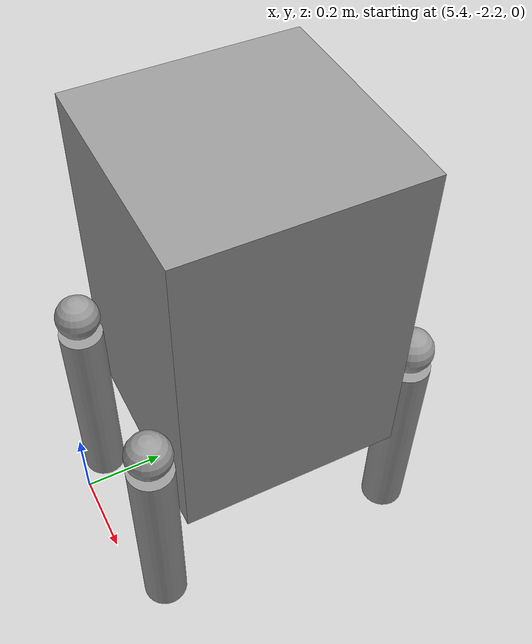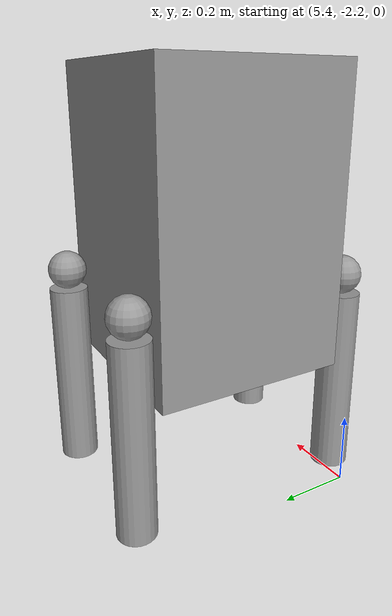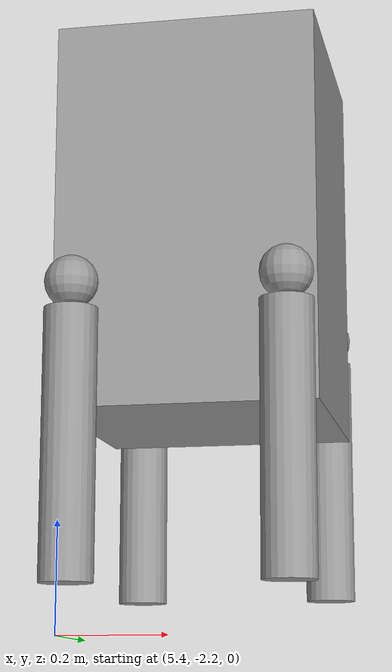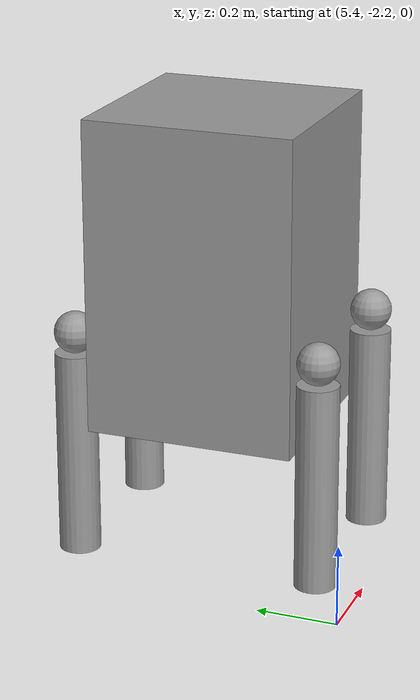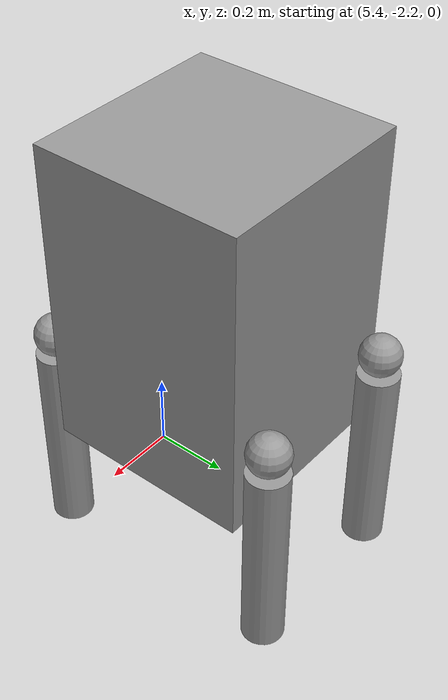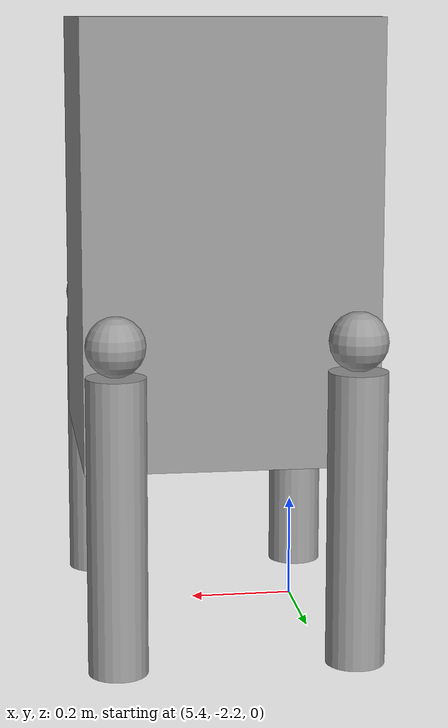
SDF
<?xml version='1.0'?>
<sdf version='1.6'>
  <model name='myhumanoid'>
    <link name='link_0'>
      <pose frame=''>5.60089 -1.84381 0.544444 0 -0 0</pose>
      <inertial>
        <mass>1</mass>
        <inertia>
          <ixx>0.166667</ixx>
          <ixy>0</ixy>
          <ixz>0</ixz>
          <iyy>0.166667</iyy>
          <iyz>0</iyz>
          <izz>0.166667</izz>
        </inertia>
        <pose frame=''>0 0 0.25 0 -0 0</pose>
      </inertial>
      <gravity>1</gravity>
      <self_collide>0</self_collide>
      <kinematic>0</kinematic>
      <visual name='visual'>
        <pose frame=''>0 0 0.25 0 -0 0</pose>
        <geometry>
          <box>
            <size>0.5 0.5 0.75</size>
          </box>
        </geometry>
        <material>
          <lighting>1</lighting>
          <script>
            <uri>file://media/materials/scripts/gazebo.material</uri>
            <name>Gazebo/Grey</name>
          </script>
          <ambient>0.3 0.3 0.3 1</ambient>
          <diffuse>0.7 0.7 0.7 1</diffuse>
          <specular>0.01 0.01 0.01 1</specular>
          <emissive>0 0 0 1</emissive>
          <shader type='vertex'>
            <normal_map>__default__</normal_map>
          </shader>
        </material>
        <transparency>0</transparency>
        <cast_shadows>1</cast_shadows>
      </visual>
      <collision name='collision'>
        <laser_retro>0</laser_retro>
        <max_contacts>10</max_contacts>
        <pose frame=''>0 0 0.25 0 -0 0</pose>
        <geometry>
          <box>
            <size>0.5 0.5 0.75</size>
          </box>
        </geometry>
        <surface>
          <friction>
            <ode>
              <mu>1</mu>
              <mu2>1</mu2>
              <fdir1>0 0 0</fdir1>
              <slip1>0</slip1>
              <slip2>0</slip2>
            </ode>
            <torsional>
              <coefficient>1</coefficient>
              <patch_radius>0</patch_radius>
              <surface_radius>0</surface_radius>
              <use_patch_radius>1</use_patch_radius>
              <ode>
                <slip>0</slip>
              </ode>
            </torsional>
          </friction>
          <bounce>
            <restitution_coefficient>0</restitution_coefficient>
            <threshold>1e+06</threshold>
          </bounce>
          <contact>
            <collide_without_contact>0</collide_without_contact>
            <collide_without_contact_bitmask>1</collide_without_contact_bitmask>
            <collide_bitmask>1</collide_bitmask>
            <ode>
              <soft_cfm>0</soft_cfm>
              <soft_erp>0.2</soft_erp>
              <kp>1e+13</kp>
              <kd>1</kd>
              <max_vel>0.01</max_vel>
              <min_depth>0</min_depth>
            </ode>
            <bullet>
              <split_impulse>1</split_impulse>
              <split_impulse_penetration_threshold>-0.01</split_impulse_penetration_threshold>
              <soft_cfm>0</soft_cfm>
              <soft_erp>0.2</soft_erp>
              <kp>1e+13</kp>
              <kd>1</kd>
            </bullet>
          </contact>
        </surface>
      </collision>
    </link>
    <link name='link_1_clone'>
      <pose frame=''>5.40089 -1.54381 0.644444 0 -0 0</pose>
      <inertial>
        <mass>1</mass>
        <inertia>
          <ixx>0.1</ixx>
          <ixy>0</ixy>
          <ixz>0</ixz>
          <iyy>0.1</iyy>
          <iyz>0</iyz>
          <izz>0.1</izz>
        </inertia>
        <pose frame=''>0 0 0 0 -0 0</pose>
      </inertial>
      <self_collide>0</self_collide>
      <kinematic>0</kinematic>
      <gravity>1</gravity>
      <visual name='visual'>
        <pose frame=''>0 0 0 0 -0 0</pose>
        <geometry>
          <sphere>
            <radius>0.05</radius>
          </sphere>
        </geometry>
        <material>
          <lighting>1</lighting>
          <script>
            <uri>file://media/materials/scripts/gazebo.material</uri>
            <name>Gazebo/Grey</name>
          </script>
          <ambient>0.3 0.3 0.3 1</ambient>
          <diffuse>0.7 0.7 0.7 1</diffuse>
          <specular>0.01 0.01 0.01 1</specular>
          <emissive>0 0 0 1</emissive>
          <shader type='vertex'>
            <normal_map>__default__</normal_map>
          </shader>
        </material>
        <transparency>0</transparency>
        <cast_shadows>1</cast_shadows>
      </visual>
      <collision name='collision'>
        <laser_retro>0</laser_retro>
        <max_contacts>10</max_contacts>
        <pose frame=''>0 0 0 0 -0 0</pose>
        <geometry>
          <sphere>
            <radius>0.05</radius>
          </sphere>
        </geometry>
        <surface>
          <friction>
            <ode>
              <mu>1</mu>
              <mu2>1</mu2>
              <fdir1>0 0 0</fdir1>
              <slip1>0</slip1>
              <slip2>0</slip2>
            </ode>
            <torsional>
              <coefficient>1</coefficient>
              <patch_radius>0</patch_radius>
              <surface_radius>0</surface_radius>
              <use_patch_radius>1</use_patch_radius>
              <ode>
                <slip>0</slip>
              </ode>
            </torsional>
          </friction>
          <bounce>
            <restitution_coefficient>0</restitution_coefficient>
            <threshold>1e+06</threshold>
          </bounce>
          <contact>
            <collide_without_contact>0</collide_without_contact>
            <collide_without_contact_bitmask>1</collide_without_contact_bitmask>
            <collide_bitmask>1</collide_bitmask>
            <ode>
              <soft_cfm>0</soft_cfm>
              <soft_erp>0.2</soft_erp>
              <kp>1e+13</kp>
              <kd>1</kd>
              <max_vel>0.01</max_vel>
              <min_depth>0</min_depth>
            </ode>
            <bullet>
              <split_impulse>1</split_impulse>
              <split_impulse_penetration_threshold>-0.01</split_impulse_penetration_threshold>
              <soft_cfm>0</soft_cfm>
              <soft_erp>0.2</soft_erp>
              <kp>1e+13</kp>
              <kd>1</kd>
            </bullet>
          </contact>
        </surface>
      </collision>
    </link>
    <link name='link_1_clone_clone'>
      <pose frame=''>5.40089 -2.14381 0.644444 0 -0 0</pose>
      <inertial>
        <mass>1</mass>
        <inertia>
          <ixx>0.1</ixx>
          <ixy>0</ixy>
          <ixz>0</ixz>
          <iyy>0.1</iyy>
          <iyz>0</iyz>
          <izz>0.1</izz>
        </inertia>
        <pose frame=''>0 0 0 0 -0 0</pose>
      </inertial>
      <self_collide>0</self_collide>
      <kinematic>0</kinematic>
      <visual name='visual'>
        <pose frame=''>0 0 0 0 -0 0</pose>
        <geometry>
          <sphere>
            <radius>0.05</radius>
          </sphere>
        </geometry>
        <material>
          <lighting>1</lighting>
          <script>
            <uri>file://media/materials/scripts/gazebo.material</uri>
            <name>Gazebo/Grey</name>
          </script>
          <ambient>0.3 0.3 0.3 1</ambient>
          <diffuse>0.7 0.7 0.7 1</diffuse>
          <specular>0.01 0.01 0.01 1</specular>
          <emissive>0 0 0 1</emissive>
          <shader type='vertex'>
            <normal_map>__default__</normal_map>
          </shader>
        </material>
        <transparency>0</transparency>
        <cast_shadows>1</cast_shadows>
      </visual>
      <collision name='collision'>
        <laser_retro>0</laser_retro>
        <max_contacts>10</max_contacts>
        <pose frame=''>0 0 0 0 -0 0</pose>
        <geometry>
          <sphere>
            <radius>0.05</radius>
          </sphere>
        </geometry>
        <surface>
          <friction>
            <ode>
              <mu>1</mu>
              <mu2>1</mu2>
              <fdir1>0 0 0</fdir1>
              <slip1>0</slip1>
              <slip2>0</slip2>
            </ode>
            <torsional>
              <coefficient>1</coefficient>
              <patch_radius>0</patch_radius>
              <surface_radius>0</surface_radius>
              <use_patch_radius>1</use_patch_radius>
              <ode>
                <slip>0</slip>
              </ode>
            </torsional>
          </friction>
          <bounce>
            <restitution_coefficient>0</restitution_coefficient>
            <threshold>1e+06</threshold>
          </bounce>
          <contact>
            <collide_without_contact>0</collide_without_contact>
            <collide_without_contact_bitmask>1</collide_without_contact_bitmask>
            <collide_bitmask>1</collide_bitmask>
            <ode>
              <soft_cfm>0</soft_cfm>
              <soft_erp>0.2</soft_erp>
              <kp>1e+13</kp>
              <kd>1</kd>
              <max_vel>0.01</max_vel>
              <min_depth>0</min_depth>
            </ode>
            <bullet>
              <split_impulse>1</split_impulse>
              <split_impulse_penetration_threshold>-0.01</split_impulse_penetration_threshold>
              <soft_cfm>0</soft_cfm>
              <soft_erp>0.2</soft_erp>
              <kp>1e+13</kp>
              <kd>1</kd>
            </bullet>
          </contact>
        </surface>
      </collision>
    </link>
    <link name='link_1_clone_clone_0'>
      <pose frame=''>5.80089 -2.14381 0.644444 0 -0 0</pose>
      <inertial>
        <mass>1</mass>
        <inertia>
          <ixx>0.1</ixx>
          <ixy>0</ixy>
          <ixz>0</ixz>
          <iyy>0.1</iyy>
          <iyz>0</iyz>
          <izz>0.1</izz>
        </inertia>
        <pose frame=''>0 0 0 0 -0 0</pose>
      </inertial>
      <self_collide>0</self_collide>
      <kinematic>0</kinematic>
      <gravity>1</gravity>
      <visual name='visual'>
        <pose frame=''>0 0 0 0 -0 0</pose>
        <geometry>
          <sphere>
            <radius>0.05</radius>
          </sphere>
        </geometry>
        <material>
          <lighting>1</lighting>
          <script>
            <uri>file://media/materials/scripts/gazebo.material</uri>
            <name>Gazebo/Grey</name>
          </script>
          <ambient>0.3 0.3 0.3 1</ambient>
          <diffuse>0.7 0.7 0.7 1</diffuse>
          <specular>0.01 0.01 0.01 1</specular>
          <emissive>0 0 0 1</emissive>
          <shader type='vertex'>
            <normal_map>__default__</normal_map>
          </shader>
        </material>
        <transparency>0</transparency>
        <cast_shadows>1</cast_shadows>
      </visual>
      <collision name='collision'>
        <laser_retro>0</laser_retro>
        <max_contacts>10</max_contacts>
        <pose frame=''>0 0 0 0 -0 0</pose>
        <geometry>
          <sphere>
            <radius>0.05</radius>
          </sphere>
        </geometry>
        <surface>
          <friction>
            <ode>
              <mu>1</mu>
              <mu2>1</mu2>
              <fdir1>0 0 0</fdir1>
              <slip1>0</slip1>
              <slip2>0</slip2>
            </ode>
            <torsional>
              <coefficient>1</coefficient>
              <patch_radius>0</patch_radius>
              <surface_radius>0</surface_radius>
              <use_patch_radius>1</use_patch_radius>
              <ode>
                <slip>0</slip>
              </ode>
            </torsional>
          </friction>
          <bounce>
            <restitution_coefficient>0</restitution_coefficient>
            <threshold>1e+06</threshold>
          </bounce>
          <contact>
            <collide_without_contact>0</collide_without_contact>
            <collide_without_contact_bitmask>1</collide_without_contact_bitmask>
            <collide_bitmask>1</collide_bitmask>
            <ode>
              <soft_cfm>0</soft_cfm>
              <soft_erp>0.2</soft_erp>
              <kp>1e+13</kp>
              <kd>1</kd>
              <max_vel>0.01</max_vel>
              <min_depth>0</min_depth>
            </ode>
            <bullet>
              <split_impulse>1</split_impulse>
              <split_impulse_penetration_threshold>-0.01</split_impulse_penetration_threshold>
              <soft_cfm>0</soft_cfm>
              <soft_erp>0.2</soft_erp>
              <kp>1e+13</kp>
              <kd>1</kd>
            </bullet>
          </contact>
        </surface>
      </collision>
    </link>
    <link name='link_1_clone_clone_1'>
      <pose frame=''>5.80089 -1.54381 0.644444 0 -0 0</pose>
      <inertial>
        <mass>1</mass>
        <inertia>
          <ixx>0.1</ixx>
          <ixy>0</ixy>
          <ixz>0</ixz>
          <iyy>0.1</iyy>
          <iyz>0</iyz>
          <izz>0.1</izz>
        </inertia>
        <pose frame=''>0 0 0 0 -0 0</pose>
      </inertial>
      <self_collide>0</self_collide>
      <kinematic>0</kinematic>
      <visual name='visual'>
        <pose frame=''>0 0 0 0 -0 0</pose>
        <geometry>
          <sphere>
            <radius>0.05</radius>
          </sphere>
        </geometry>
        <material>
          <lighting>1</lighting>
          <script>
            <uri>file://media/materials/scripts/gazebo.material</uri>
            <name>Gazebo/Grey</name>
          </script>
          <ambient>0.3 0.3 0.3 1</ambient>
          <diffuse>0.7 0.7 0.7 1</diffuse>
          <specular>0.01 0.01 0.01 1</specular>
          <emissive>0 0 0 1</emissive>
          <shader type='vertex'>
            <normal_map>__default__</normal_map>
          </shader>
        </material>
        <transparency>0</transparency>
        <cast_shadows>1</cast_shadows>
      </visual>
      <collision name='collision'>
        <laser_retro>0</laser_retro>
        <max_contacts>10</max_contacts>
        <pose frame=''>0 0 0 0 -0 0</pose>
        <geometry>
          <sphere>
            <radius>0.05</radius>
          </sphere>
        </geometry>
        <surface>
          <friction>
            <ode>
              <mu>1</mu>
              <mu2>1</mu2>
              <fdir1>0 0 0</fdir1>
              <slip1>0</slip1>
              <slip2>0</slip2>
            </ode>
            <torsional>
              <coefficient>1</coefficient>
              <patch_radius>0</patch_radius>
              <surface_radius>0</surface_radius>
              <use_patch_radius>1</use_patch_radius>
              <ode>
                <slip>0</slip>
              </ode>
            </torsional>
          </friction>
          <bounce>
            <restitution_coefficient>0</restitution_coefficient>
            <threshold>1e+06</threshold>
          </bounce>
          <contact>
            <collide_without_contact>0</collide_without_contact>
            <collide_without_contact_bitmask>1</collide_without_contact_bitmask>
            <collide_bitmask>1</collide_bitmask>
            <ode>
              <soft_cfm>0</soft_cfm>
              <soft_erp>0.2</soft_erp>
              <kp>1e+13</kp>
              <kd>1</kd>
              <max_vel>0.01</max_vel>
              <min_depth>0</min_depth>
            </ode>
            <bullet>
              <split_impulse>1</split_impulse>
              <split_impulse_penetration_threshold>-0.01</split_impulse_penetration_threshold>
              <soft_cfm>0</soft_cfm>
              <soft_erp>0.2</soft_erp>
              <kp>1e+13</kp>
              <kd>1</kd>
            </bullet>
          </contact>
        </surface>
      </collision>
    </link>
    <link name='link_2_clone'>
      <pose frame=''>5.40089 -1.54381 0.344444 0 -0 0</pose>
      <inertial>
        <mass>1</mass>
        <inertia>
          <ixx>0.145833</ixx>
          <ixy>0</ixy>
          <ixz>0</ixz>
          <iyy>0.145833</iyy>
          <iyz>0</iyz>
          <izz>0.125</izz>
        </inertia>
        <pose frame=''>0 0 0 0 -0 0</pose>
      </inertial>
      <self_collide>0</self_collide>
      <kinematic>0</kinematic>
      <visual name='visual'>
        <pose frame=''>0 0 0 0 -0 0</pose>
        <geometry>
          <cylinder>
            <radius>0.05</radius>
            <length>0.5</length>
          </cylinder>
        </geometry>
        <material>
          <lighting>1</lighting>
          <script>
            <uri>file://media/materials/scripts/gazebo.material</uri>
            <name>Gazebo/Grey</name>
          </script>
          <ambient>0.3 0.3 0.3 1</ambient>
          <diffuse>0.7 0.7 0.7 1</diffuse>
          <specular>0.01 0.01 0.01 1</specular>
          <emissive>0 0 0 1</emissive>
          <shader type='vertex'>
            <normal_map>__default__</normal_map>
          </shader>
        </material>
        <transparency>0</transparency>
        <cast_shadows>1</cast_shadows>
      </visual>
      <collision name='collision'>
        <laser_retro>0</laser_retro>
        <max_contacts>10</max_contacts>
        <pose frame=''>0 0 0 0 -0 0</pose>
        <geometry>
          <cylinder>
            <radius>0.05</radius>
            <length>0.5</length>
          </cylinder>
        </geometry>
        <surface>
          <friction>
            <ode>
              <mu>1</mu>
              <mu2>1</mu2>
              <fdir1>0 0 0</fdir1>
              <slip1>0</slip1>
              <slip2>0</slip2>
            </ode>
            <torsional>
              <coefficient>1</coefficient>
              <patch_radius>0</patch_radius>
              <surface_radius>0</surface_radius>
              <use_patch_radius>1</use_patch_radius>
              <ode>
                <slip>0</slip>
              </ode>
            </torsional>
          </friction>
          <bounce>
            <restitution_coefficient>0</restitution_coefficient>
            <threshold>1e+06</threshold>
          </bounce>
          <contact>
            <collide_without_contact>0</collide_without_contact>
            <collide_without_contact_bitmask>1</collide_without_contact_bitmask>
            <collide_bitmask>1</collide_bitmask>
            <ode>
              <soft_cfm>0</soft_cfm>
              <soft_erp>0.2</soft_erp>
              <kp>1e+13</kp>
              <kd>1</kd>
              <max_vel>0.01</max_vel>
              <min_depth>0</min_depth>
            </ode>
            <bullet>
              <split_impulse>1</split_impulse>
              <split_impulse_penetration_threshold>-0.01</split_impulse_penetration_threshold>
              <soft_cfm>0</soft_cfm>
              <soft_erp>0.2</soft_erp>
              <kp>1e+13</kp>
              <kd>1</kd>
            </bullet>
          </contact>
        </surface>
      </collision>
    </link>
    <link name='link_2_clone_clone'>
      <pose frame=''>5.40089 -2.14381 0.344444 0 -0 0</pose>
      <inertial>
        <mass>1</mass>
        <inertia>
          <ixx>0.145833</ixx>
          <ixy>0</ixy>
          <ixz>0</ixz>
          <iyy>0.145833</iyy>
          <iyz>0</iyz>
          <izz>0.125</izz>
        </inertia>
        <pose frame=''>0 0 0 0 -0 0</pose>
      </inertial>
      <self_collide>0</self_collide>
      <kinematic>0</kinematic>
      <visual name='visual'>
        <pose frame=''>0 0 0 0 -0 0</pose>
        <geometry>
          <cylinder>
            <radius>0.05</radius>
            <length>0.5</length>
          </cylinder>
        </geometry>
        <material>
          <lighting>1</lighting>
          <script>
            <uri>file://media/materials/scripts/gazebo.material</uri>
            <name>Gazebo/Grey</name>
          </script>
          <ambient>0.3 0.3 0.3 1</ambient>
          <diffuse>0.7 0.7 0.7 1</diffuse>
          <specular>0.01 0.01 0.01 1</specular>
          <emissive>0 0 0 1</emissive>
          <shader type='vertex'>
            <normal_map>__default__</normal_map>
          </shader>
        </material>
        <transparency>0</transparency>
        <cast_shadows>1</cast_shadows>
      </visual>
      <collision name='collision'>
        <laser_retro>0</laser_retro>
        <max_contacts>10</max_contacts>
        <pose frame=''>0 0 0 0 -0 0</pose>
        <geometry>
          <cylinder>
            <radius>0.05</radius>
            <length>0.5</length>
          </cylinder>
        </geometry>
        <surface>
          <friction>
            <ode>
              <mu>1</mu>
              <mu2>1</mu2>
              <fdir1>0 0 0</fdir1>
              <slip1>0</slip1>
              <slip2>0</slip2>
            </ode>
            <torsional>
              <coefficient>1</coefficient>
              <patch_radius>0</patch_radius>
              <surface_radius>0</surface_radius>
              <use_patch_radius>1</use_patch_radius>
              <ode>
                <slip>0</slip>
              </ode>
            </torsional>
          </friction>
          <bounce>
            <restitution_coefficient>0</restitution_coefficient>
            <threshold>1e+06</threshold>
          </bounce>
          <contact>
            <collide_without_contact>0</collide_without_contact>
            <collide_without_contact_bitmask>1</collide_without_contact_bitmask>
            <collide_bitmask>1</collide_bitmask>
            <ode>
              <soft_cfm>0</soft_cfm>
              <soft_erp>0.2</soft_erp>
              <kp>1e+13</kp>
              <kd>1</kd>
              <max_vel>0.01</max_vel>
              <min_depth>0</min_depth>
            </ode>
            <bullet>
              <split_impulse>1</split_impulse>
              <split_impulse_penetration_threshold>-0.01</split_impulse_penetration_threshold>
              <soft_cfm>0</soft_cfm>
              <soft_erp>0.2</soft_erp>
              <kp>1e+13</kp>
              <kd>1</kd>
            </bullet>
          </contact>
        </surface>
      </collision>
    </link>
    <link name='link_2_clone_clone_0'>
      <pose frame=''>5.80089 -2.14381 0.344444 0 -0 0</pose>
      <inertial>
        <mass>1</mass>
        <inertia>
          <ixx>0.145833</ixx>
          <ixy>0</ixy>
          <ixz>0</ixz>
          <iyy>0.145833</iyy>
          <iyz>0</iyz>
          <izz>0.125</izz>
        </inertia>
        <pose frame=''>0 0 0 0 -0 0</pose>
      </inertial>
      <self_collide>0</self_collide>
      <kinematic>0</kinematic>
      <visual name='visual'>
        <pose frame=''>0 0 0 0 -0 0</pose>
        <geometry>
          <cylinder>
            <radius>0.05</radius>
            <length>0.5</length>
          </cylinder>
        </geometry>
        <material>
          <lighting>1</lighting>
          <script>
            <uri>file://media/materials/scripts/gazebo.material</uri>
            <name>Gazebo/Grey</name>
          </script>
          <ambient>0.3 0.3 0.3 1</ambient>
          <diffuse>0.7 0.7 0.7 1</diffuse>
          <specular>0.01 0.01 0.01 1</specular>
          <emissive>0 0 0 1</emissive>
          <shader type='vertex'>
            <normal_map>__default__</normal_map>
          </shader>
        </material>
        <transparency>0</transparency>
        <cast_shadows>1</cast_shadows>
      </visual>
      <collision name='collision'>
        <laser_retro>0</laser_retro>
        <max_contacts>10</max_contacts>
        <pose frame=''>0 0 0 0 -0 0</pose>
        <geometry>
          <cylinder>
            <radius>0.05</radius>
            <length>0.5</length>
          </cylinder>
        </geometry>
        <surface>
          <friction>
            <ode>
              <mu>1</mu>
              <mu2>1</mu2>
              <fdir1>0 0 0</fdir1>
              <slip1>0</slip1>
              <slip2>0</slip2>
            </ode>
            <torsional>
              <coefficient>1</coefficient>
              <patch_radius>0</patch_radius>
              <surface_radius>0</surface_radius>
              <use_patch_radius>1</use_patch_radius>
              <ode>
                <slip>0</slip>
              </ode>
            </torsional>
          </friction>
          <bounce>
            <restitution_coefficient>0</restitution_coefficient>
            <threshold>1e+06</threshold>
          </bounce>
          <contact>
            <collide_without_contact>0</collide_without_contact>
            <collide_without_contact_bitmask>1</collide_without_contact_bitmask>
            <collide_bitmask>1</collide_bitmask>
            <ode>
              <soft_cfm>0</soft_cfm>
              <soft_erp>0.2</soft_erp>
              <kp>1e+13</kp>
              <kd>1</kd>
              <max_vel>0.01</max_vel>
              <min_depth>0</min_depth>
            </ode>
            <bullet>
              <split_impulse>1</split_impulse>
              <split_impulse_penetration_threshold>-0.01</split_impulse_penetration_threshold>
              <soft_cfm>0</soft_cfm>
              <soft_erp>0.2</soft_erp>
              <kp>1e+13</kp>
              <kd>1</kd>
            </bullet>
          </contact>
        </surface>
      </collision>
    </link>
    <link name='link_2_clone_clone_1'>
      <pose frame=''>5.80089 -1.54381 0.344444 0 -0 0</pose>
      <inertial>
        <mass>1</mass>
        <inertia>
          <ixx>0.145833</ixx>
          <ixy>0</ixy>
          <ixz>0</ixz>
          <iyy>0.145833</iyy>
          <iyz>0</iyz>
          <izz>0.125</izz>
        </inertia>
        <pose frame=''>0 0 0 0 -0 0</pose>
      </inertial>
      <self_collide>0</self_collide>
      <kinematic>0</kinematic>
      <visual name='visual'>
        <pose frame=''>0 0 0 0 -0 0</pose>
        <geometry>
          <cylinder>
            <radius>0.05</radius>
            <length>0.5</length>
          </cylinder>
        </geometry>
        <material>
          <lighting>1</lighting>
          <script>
            <uri>file://media/materials/scripts/gazebo.material</uri>
            <name>Gazebo/Grey</name>
          </script>
          <ambient>0.3 0.3 0.3 1</ambient>
          <diffuse>0.7 0.7 0.7 1</diffuse>
          <specular>0.01 0.01 0.01 1</specular>
          <emissive>0 0 0 1</emissive>
          <shader type='vertex'>
            <normal_map>__default__</normal_map>
          </shader>
        </material>
        <transparency>0</transparency>
        <cast_shadows>1</cast_shadows>
      </visual>
      <collision name='collision'>
        <laser_retro>0</laser_retro>
        <max_contacts>10</max_contacts>
        <pose frame=''>0 0 0 0 -0 0</pose>
        <geometry>
          <cylinder>
            <radius>0.05</radius>
            <length>0.5</length>
          </cylinder>
        </geometry>
        <surface>
          <friction>
            <ode>
              <mu>1</mu>
              <mu2>1</mu2>
              <fdir1>0 0 0</fdir1>
              <slip1>0</slip1>
              <slip2>0</slip2>
            </ode>
            <torsional>
              <coefficient>1</coefficient>
              <patch_radius>0</patch_radius>
              <surface_radius>0</surface_radius>
              <use_patch_radius>1</use_patch_radius>
              <ode>
                <slip>0</slip>
              </ode>
            </torsional>
          </friction>
          <bounce>
            <restitution_coefficient>0</restitution_coefficient>
            <threshold>1e+06</threshold>
          </bounce>
          <contact>
            <collide_without_contact>0</collide_without_contact>
            <collide_without_contact_bitmask>1</collide_without_contact_bitmask>
            <collide_bitmask>1</collide_bitmask>
            <ode>
              <soft_cfm>0</soft_cfm>
              <soft_erp>0.2</soft_erp>
              <kp>1e+13</kp>
              <kd>1</kd>
              <max_vel>0.01</max_vel>
              <min_depth>0</min_depth>
            </ode>
            <bullet>
              <split_impulse>1</split_impulse>
              <split_impulse_penetration_threshold>-0.01</split_impulse_penetration_threshold>
              <soft_cfm>0</soft_cfm>
              <soft_erp>0.2</soft_erp>
              <kp>1e+13</kp>
              <kd>1</kd>
            </bullet>
          </contact>
        </surface>
      </collision>
    </link>
    <joint name='link_0_JOINT_0' type='revolute'>
      <parent>link_0</parent>
      <child>link_1_clone</child>
      <pose frame=''>0 0 0 0 -0 0</pose>
      <axis>
        <xyz>0 -1 0</xyz>
        <use_parent_model_frame>0</use_parent_model_frame>
        <limit>
          <lower>-1.79769e+308</lower>
          <upper>1.79769e+308</upper>
          <effort>-1</effort>
          <velocity>-1</velocity>
        </limit>
        <dynamics>
          <spring_reference>0</spring_reference>
          <spring_stiffness>0</spring_stiffness>
          <damping>0</damping>
          <friction>0</friction>
        </dynamics>
      </axis>
      <physics>
        <ode>
          <limit>
            <cfm>0</cfm>
            <erp>0.2</erp>
          </limit>
          <suspension>
            <cfm>0</cfm>
            <erp>0.2</erp>
          </suspension>
        </ode>
      </physics>
    </joint>
    <joint name='link_0_JOINT_1' type='revolute'>
      <parent>link_0</parent>
      <child>link_1_clone_clone</child>
      <pose frame=''>0 0 0 0 -0 0</pose>
      <axis>
        <xyz>0 1 0</xyz>
        <use_parent_model_frame>0</use_parent_model_frame>
        <limit>
          <lower>-1.79769e+308</lower>
          <upper>1.79769e+308</upper>
          <effort>-1</effort>
          <velocity>-1</velocity>
        </limit>
        <dynamics>
          <spring_reference>0</spring_reference>
          <spring_stiffness>0</spring_stiffness>
          <damping>0</damping>
        </dynamics>
      </axis>
      <physics>
        <ode>
          <limit>
            <cfm>0</cfm>
            <erp>0.2</erp>
          </limit>
          <suspension>
            <cfm>0</cfm>
            <erp>0.2</erp>
          </suspension>
        </ode>
      </physics>
    </joint>
    <joint name='link_0_JOINT_2' type='revolute'>
      <parent>link_0</parent>
      <child>link_1_clone_clone_0</child>
      <pose frame=''>0 0 0 0 -0 0</pose>
      <axis>
        <xyz>0 1 0</xyz>
        <use_parent_model_frame>0</use_parent_model_frame>
        <limit>
          <lower>-1.79769e+308</lower>
          <upper>1.79769e+308</upper>
          <effort>-1</effort>
          <velocity>-1</velocity>
        </limit>
        <dynamics>
          <spring_reference>0</spring_reference>
          <spring_stiffness>0</spring_stiffness>
          <damping>0</damping>
        </dynamics>
      </axis>
      <physics>
        <ode>
          <limit>
            <cfm>0</cfm>
            <erp>0.2</erp>
          </limit>
          <suspension>
            <cfm>0</cfm>
            <erp>0.2</erp>
          </suspension>
        </ode>
      </physics>
    </joint>
    <joint name='link_0_JOINT_3' type='revolute'>
      <parent>link_0</parent>
      <child>link_1_clone_clone_1</child>
      <pose frame=''>0 0 0 0 -0 0</pose>
      <axis>
        <xyz>-0 -1 -0</xyz>
        <use_parent_model_frame>0</use_parent_model_frame>
        <limit>
          <lower>-1.79769e+308</lower>
          <upper>1.79769e+308</upper>
          <effort>-1</effort>
          <velocity>-1</velocity>
        </limit>
        <dynamics>
          <spring_reference>0</spring_reference>
          <spring_stiffness>0</spring_stiffness>
          <damping>0</damping>
        </dynamics>
      </axis>
      <physics>
        <ode>
          <limit>
            <cfm>0</cfm>
            <erp>0.2</erp>
          </limit>
          <suspension>
            <cfm>0</cfm>
            <erp>0.2</erp>
          </suspension>
        </ode>
      </physics>
    </joint>
    <joint name='link_1_clone_JOINT_4' type='fixed'>
      <parent>link_1_clone</parent>
      <child>link_2_clone</child>
      <pose frame=''>0 0 0 0 -0 0</pose>
      <physics>
        <ode>
          <limit>
            <cfm>0</cfm>
            <erp>0.2</erp>
          </limit>
          <suspension>
            <cfm>0</cfm>
            <erp>0.2</erp>
          </suspension>
        </ode>
      </physics>
    </joint>
    <joint name='link_1_clone_clone_0_JOINT_6' type='fixed'>
      <parent>link_1_clone_clone_0</parent>
      <child>link_2_clone_clone_0</child>
      <pose frame=''>0 0 0 0 -0 0</pose>
      <physics>
        <ode>
          <limit>
            <cfm>0</cfm>
            <erp>0.2</erp>
          </limit>
          <suspension>
            <cfm>0</cfm>
            <erp>0.2</erp>
          </suspension>
        </ode>
      </physics>
    </joint>
    <joint name='link_1_clone_clone_1_JOINT_7' type='fixed'>
      <parent>link_1_clone_clone_1</parent>
      <child>link_2_clone_clone_1</child>
      <pose frame=''>0 0 0 0 -0 0</pose>
      <physics>
        <ode>
          <limit>
            <cfm>0</cfm>
            <erp>0.2</erp>
          </limit>
          <suspension>
            <cfm>0</cfm>
            <erp>0.2</erp>
          </suspension>
        </ode>
      </physics>
    </joint>
    <joint name='link_1_clone_clone_JOINT_5' type='fixed'>
      <parent>link_1_clone_clone</parent>
      <child>link_2_clone_clone</child>
      <pose frame=''>0 0 0 0 -0 0</pose>
      <physics>
        <ode>
          <limit>
            <cfm>0</cfm>
            <erp>0.2</erp>
          </limit>
          <suspension>
            <cfm>0</cfm>
            <erp>0.2</erp>
          </suspension>
        </ode>
      </physics>
    </joint>
    <static>0</static>
    <allow_auto_disable>1</allow_auto_disable>
  </model>
</sdf>
